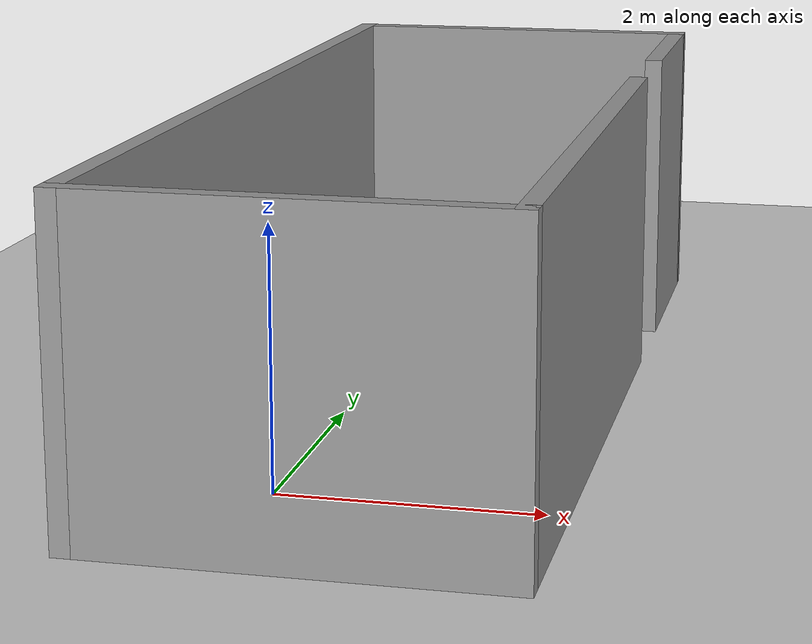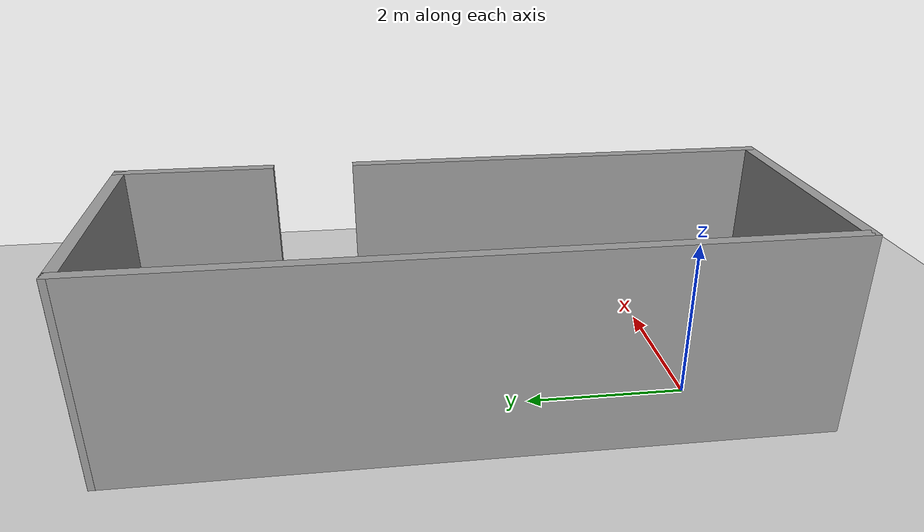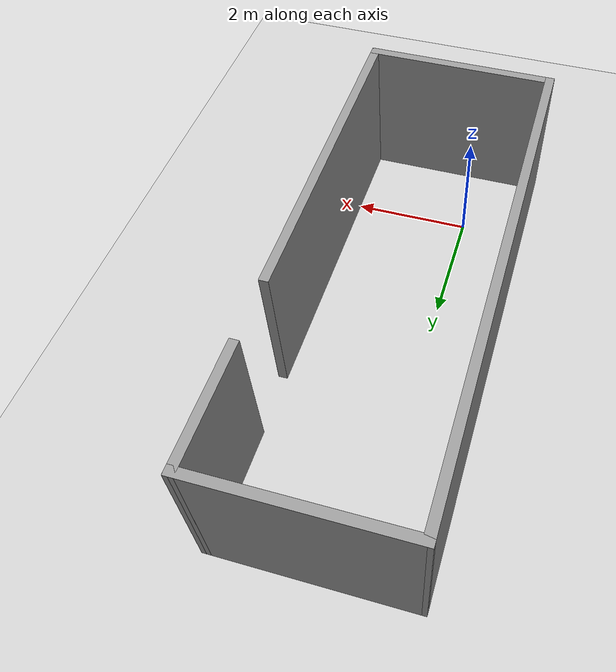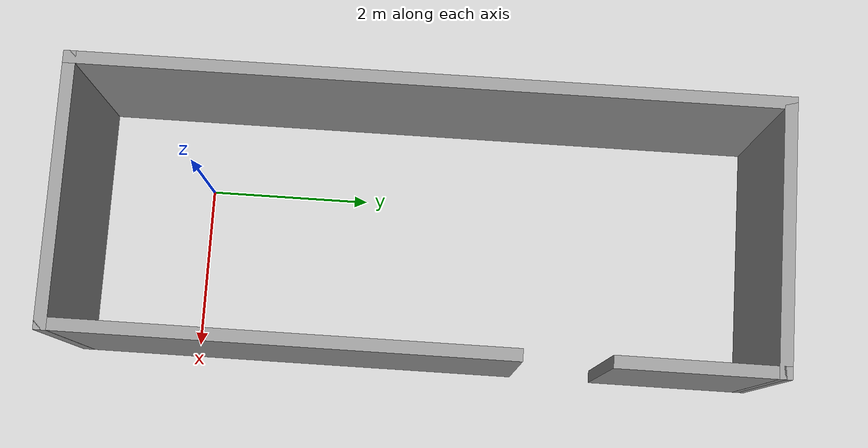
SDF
<sdf version="1.7">
 <world name="default">
  <light name="sun" type="directional">
   <pose>0 0 10 0 -0 0</pose>
   <diffuse>0.8 0.8 0.8 1</diffuse>
   <specular>0.2 0.2 0.2 1</specular>
   <attenuation>
    <range>1000</range>
    <constant>0.9</constant>
    <linear>0.01</linear>
    <quadratic>0.001</quadratic>
   </attenuation>
   <direction>-0.5 0.1 -0.9</direction>
   <spot><inner_angle>0</inner_angle><outer_angle>0</outer_angle><falloff>0</falloff></spot>
  </light>
  <model name="ground_plane">
   <static>1</static>
   <link name="link">
    <collision name="collision">
     <geometry><plane><normal>0 0 1</normal><size>100 100</size></plane></geometry>
     <surface>
      <contact><collide_bitmask>65535</collide_bitmask></contact>
      <friction><ode><mu>100</mu><mu2>50</mu2></ode></friction>
     </surface>
    </collision>
    <visual name="visual">
     <cast_shadows>0</cast_shadows>
     <geometry><plane><normal>0 0 1</normal><size>100 100</size></plane></geometry>
     <material>
      <script><uri>file://media/materials/scripts/gazebo.material</uri><name>Gazebo/Grey</name></script>
     </material>
    </visual>
   </link>
  </model>
  <gravity>0 0 -9.8</gravity>
  <magnetic_field>6e-06 2.3e-05 -4.2e-05</magnetic_field>
  <atmosphere type="adiabatic"/>
  <physics type="ode">
   <max_step_size>0.001</max_step_size>
   <real_time_factor>1</real_time_factor>
   <real_time_update_rate>1000</real_time_update_rate>
  </physics>
  <scene><ambient>0.4 0.4 0.4 1</ambient><background>0.7 0.7 0.7 1</background><shadows>1</shadows></scene>
  <spherical_coordinates>
   <surface_model>EARTH_WGS84</surface_model>
   <latitude_deg>0</latitude_deg>
   <longitude_deg>0</longitude_deg>
   <elevation>0</elevation>
   <heading_deg>0</heading_deg>
  </spherical_coordinates>
  <model name="miniproject_test">
   <pose>0.533024 2.74968 0 0 -0 0</pose>
   <link name="Wall_10">
    <collision name="Wall_10_Collision">
     <geometry><box><size>2 0.15 2.5</size></box></geometry>
     <pose>0 0 1.25 0 -0 0</pose>
    </collision>
    <visual name="Wall_10_Visual">
     <pose>0 0 1.25 0 -0 0</pose>
     <geometry><box><size>2 0.15 2.5</size></box></geometry>
     <material>
      <script><uri>file://media/materials/scripts/gazebo.material</uri><name>Gazebo/Grey</name></script>
      <ambient>1 1 1 1</ambient>
     </material>
     <meta><layer>0</layer></meta>
    </visual>
    <pose>1.55253 3.25565 0 0 -0 -1.5708</pose>
   </link>
   <link name="Wall_12">
    <collision name="Wall_12_Collision">
     <geometry><box><size>3.25508 0.15 2.5</size></box></geometry>
     <pose>0 0 1.25 0 -0 0</pose>
    </collision>
    <visual name="Wall_12_Visual">
     <pose>0 0 1.25 0 -0 0</pose>
     <geometry><box><size>3.25508 0.15 2.5</size></box></geometry>
     <material>
      <script><uri>file://media/materials/scripts/gazebo.material</uri><name>Gazebo/Grey</name></script>
      <ambient>1 1 1 1</ambient>
     </material>
     <meta><layer>0</layer></meta>
    </visual>
    <pose>0 4.17486 0 0 -0 -3.13786</pose>
   </link>
   <link name="Wall_13">
    <collision name="Wall_13_Collision">
     <geometry><box><size>8.5 0.15 2.5</size></box></geometry>
     <pose>0 0 1.25 0 -0 0</pose>
    </collision>
    <visual name="Wall_13_Visual">
     <pose>0 0 1.25 0 -0 0</pose>
     <geometry><box><size>8.5 0.15 2.5</size></box></geometry>
     <material>
      <script><uri>file://media/materials/scripts/gazebo.material</uri><name>Gazebo/Grey</name></script>
      <ambient>1 1 1 1</ambient>
     </material>
     <meta><layer>0</layer></meta>
    </visual>
    <pose>-1.55253 -0.005931 0 0 -0 -1.5708</pose>
   </link>
   <link name="Wall_3">
    <collision name="Wall_3_Collision">
     <geometry><box><size>5.5 0.15 2.5</size></box></geometry>
     <pose>0 0 1.25 0 -0 0</pose>
    </collision>
    <visual name="Wall_3_Visual">
     <pose>0 0 1.25 0 -0 0</pose>
     <geometry><box><size>5.5 0.15 2.5</size></box></geometry>
     <material>
      <script><uri>file://media/materials/scripts/gazebo.material</uri><name>Gazebo/Grey</name></script>
      <ambient>1 1 1 1</ambient>
     </material>
     <meta><layer>0</layer></meta>
    </visual>
    <pose>1.54686 -1.50593 0 0 -0 -1.5708</pose>
   </link>
   <link name="Wall_6">
    <collision name="Wall_6_Collision">
     <geometry><box><size>3.25 0.15 2.5</size></box></geometry>
     <pose>0 0 1.25 0 -0 0</pose>
    </collision>
    <visual name="Wall_6_Visual">
     <pose>0 0 1.25 0 -0 0</pose>
     <geometry><box><size>3.25 0.15 2.5</size></box></geometry>
     <material>
      <script><uri>file://media/materials/scripts/gazebo.material</uri><name>Gazebo/Grey</name></script>
      <ambient>1 1 1 1</ambient>
     </material>
     <meta><layer>0</layer></meta>
    </visual>
    <pose>-0.002532 -4.18093 0 0 -0 3.14159</pose>
   </link>
   <static>1</static>
  </model>
 </world>
</sdf>
